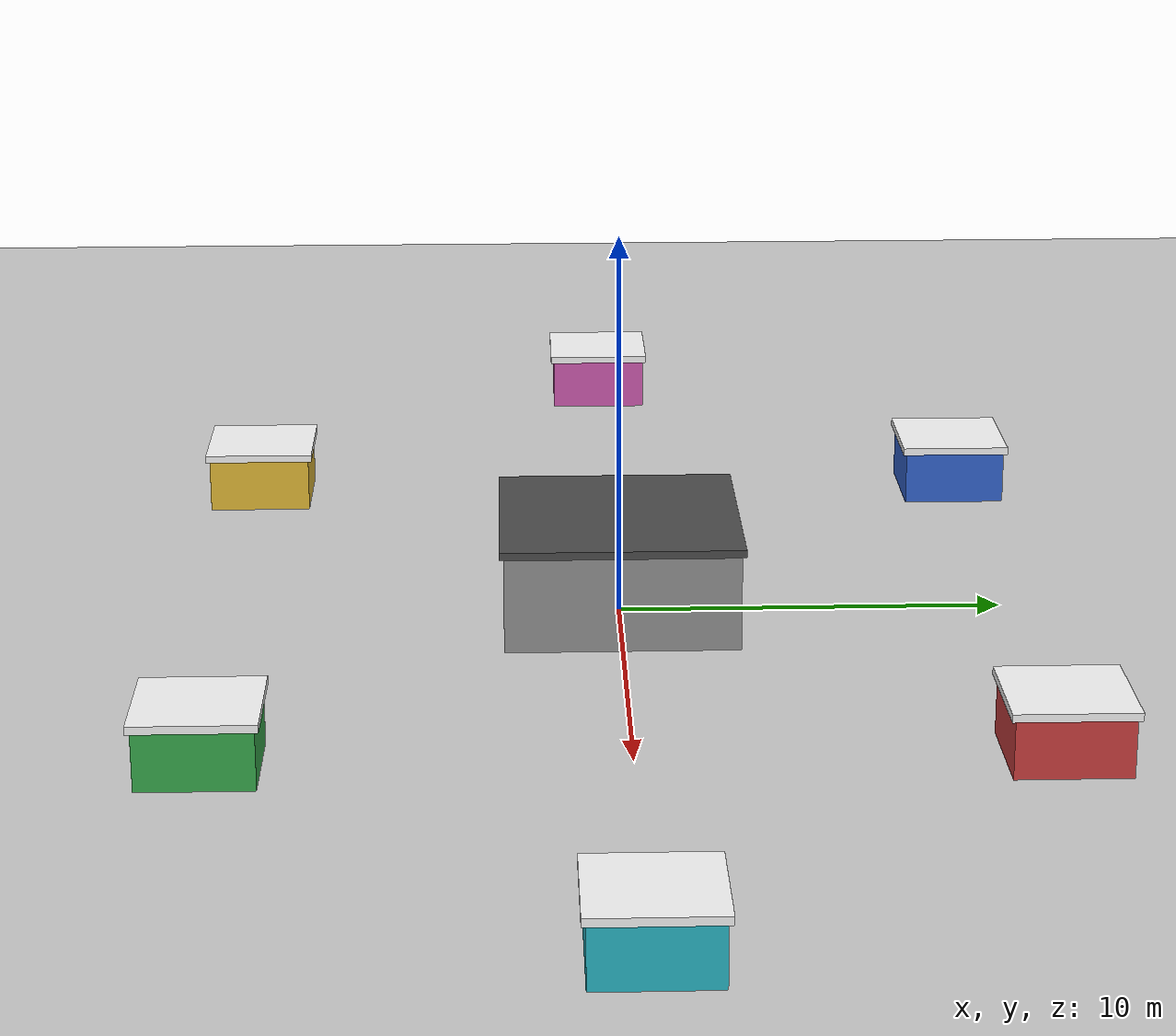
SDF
<?xml version="1.0"?>
<sdf version="1.6">
  <world name="mars_delivery_world">

    <gravity>0 0 -9.81</gravity>
    <magnetic_field>6.0e-6 2.3e-5 -4.2e-5</magnetic_field>
    <atmosphere type="adiabatic"/>

    <physics type="ode">
      <max_step_size>0.002</max_step_size>
      <real_time_factor>1.0</real_time_factor>
      <real_time_update_rate>500</real_time_update_rate>
    </physics>

    <scene>
      <ambient>0.55 0.55 0.55 1</ambient>
      <background>0.76 0.84 0.96 1</background>
      <shadows>true</shadows>
      <sky>
        <time>13.0</time>
        <sunrise>6.0</sunrise>
        <sunset>20.0</sunset>
      </sky>
    </scene>

    <gui fullscreen="0">
      <camera name="user_camera">
        <pose>0 -50 40 0.72 0.0 1.57</pose>
        <view_controller>orbit</view_controller>
      </camera>
    </gui>

    <include>
      <uri>model://ground_plane</uri>
    </include>

    <include>
      <uri>model://sun</uri>
    </include>

    <plugin name="gazebo_ros_state" filename="libgazebo_ros_state.so">
      <ros>
        <namespace>/gazebo</namespace>
      </ros>
      <update_rate>60</update_rate>
    </plugin>

    <include>
      <uri>model://warehouse</uri>
      <name>Warehouse</name>
      <pose>0 0 0 0 0 0</pose>
    </include>

    <include>
      <uri>model://house1</uri>
      <name>House1</name>
      <pose>10 10 0 0 0 0</pose>
    </include>

    <include>
      <uri>model://house2</uri>
      <name>House2</name>
      <pose>10 -10 0 0 0 0</pose>
    </include>

    <include>
      <uri>model://house3</uri>
      <name>House3</name>
      <pose>-10 10 0 0 0 0</pose>
    </include>

    <include>
      <uri>model://house4</uri>
      <name>House4</name>
      <pose>-10 -10 0 0 0 0</pose>
    </include>

    <include>
      <uri>model://house5</uri>
      <name>House5</name>
      <pose>20 0 0 0 0 0</pose>
    </include>

    <include>
      <uri>model://house6</uri>
      <name>House6</name>
      <pose>-20 0 0 0 0 0</pose>
    </include>

  </world>
</sdf>

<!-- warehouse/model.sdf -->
<sdf version="1.6">
  <model name="warehouse">
    <static>true</static>
    <link name="warehouse_link">
      <collision name="warehouse_collision">
        <pose>0 0 1.25 0 0 0</pose>
        <geometry>
          <box>
            <size>6 6 2.5</size>
          </box>
        </geometry>
      </collision>

      <visual name="warehouse_visual">
        <pose>0 0 1.25 0 0 0</pose>
        <geometry>
          <box>
            <size>6 6 2.5</size>
          </box>
        </geometry>
        <material>
          <ambient>0.45 0.45 0.45 1</ambient>
          <diffuse>0.58 0.58 0.58 1</diffuse>
          <specular>0.08 0.08 0.08 1</specular>
        </material>
      </visual>

      <visual name="warehouse_roof_visual">
        <pose>0 0 2.60 0 0 0</pose>
        <geometry>
          <box>
            <size>6.2 6.2 0.20</size>
          </box>
        </geometry>
        <material>
          <ambient>0.20 0.20 0.20 1</ambient>
          <diffuse>0.30 0.30 0.30 1</diffuse>
          <specular>0.05 0.05 0.05 1</specular>
        </material>
      </visual>
    </link>
  </model>
</sdf>

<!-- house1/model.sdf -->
<sdf version="1.6">
  <model name="house1">
    <static>true</static>
    <link name="house_link">
      <collision name="house_collision">
        <pose>0 0 0.75 0 0 0</pose>
        <geometry>
          <box>
            <size>2.8 2.8 1.5</size>
          </box>
        </geometry>
      </collision>

      <visual name="house_visual">
        <pose>0 0 0.75 0 0 0</pose>
        <geometry>
          <box>
            <size>2.8 2.8 1.5</size>
          </box>
        </geometry>
        <material>
          <ambient>0.80 0.25 0.25 1</ambient>
          <diffuse>0.80 0.25 0.25 1</diffuse>
          <specular>0.07 0.07 0.07 1</specular>
        </material>
      </visual>

      <visual name="roof_visual">
        <pose>0 0 1.55 0 0 0</pose>
        <geometry>
          <box>
            <size>3.0 3.0 0.20</size>
          </box>
        </geometry>
        <material>
          <ambient>0.92 0.92 0.92 1</ambient>
          <diffuse>0.98 0.98 0.98 1</diffuse>
          <specular>0.04 0.04 0.04 1</specular>
        </material>
      </visual>
    </link>
  </model>
</sdf>

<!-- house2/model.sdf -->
<sdf version="1.6">
  <model name="house2">
    <static>true</static>
    <link name="house_link">
      <collision name="house_collision">
        <pose>0 0 0.75 0 0 0</pose>
        <geometry>
          <box>
            <size>2.8 2.8 1.5</size>
          </box>
        </geometry>
      </collision>

      <visual name="house_visual">
        <pose>0 0 0.75 0 0 0</pose>
        <geometry>
          <box>
            <size>2.8 2.8 1.5</size>
          </box>
        </geometry>
        <material>
          <ambient>0.22 0.67 0.30 1</ambient>
          <diffuse>0.22 0.67 0.30 1</diffuse>
          <specular>0.07 0.07 0.07 1</specular>
        </material>
      </visual>

      <visual name="roof_visual">
        <pose>0 0 1.55 0 0 0</pose>
        <geometry>
          <box>
            <size>3.0 3.0 0.20</size>
          </box>
        </geometry>
        <material>
          <ambient>0.92 0.92 0.92 1</ambient>
          <diffuse>0.98 0.98 0.98 1</diffuse>
          <specular>0.04 0.04 0.04 1</specular>
        </material>
      </visual>
    </link>
  </model>
</sdf>

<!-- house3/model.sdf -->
<sdf version="1.6">
  <model name="house3">
    <static>true</static>
    <link name="house_link">
      <collision name="house_collision">
        <pose>0 0 0.75 0 0 0</pose>
        <geometry>
          <box>
            <size>2.8 2.8 1.5</size>
          </box>
        </geometry>
      </collision>

      <visual name="house_visual">
        <pose>0 0 0.75 0 0 0</pose>
        <geometry>
          <box>
            <size>2.8 2.8 1.5</size>
          </box>
        </geometry>
        <material>
          <ambient>0.20 0.40 0.82 1</ambient>
          <diffuse>0.20 0.40 0.82 1</diffuse>
          <specular>0.07 0.07 0.07 1</specular>
        </material>
      </visual>

      <visual name="roof_visual">
        <pose>0 0 1.55 0 0 0</pose>
        <geometry>
          <box>
            <size>3.0 3.0 0.20</size>
          </box>
        </geometry>
        <material>
          <ambient>0.92 0.92 0.92 1</ambient>
          <diffuse>0.98 0.98 0.98 1</diffuse>
          <specular>0.04 0.04 0.04 1</specular>
        </material>
      </visual>
    </link>
  </model>
</sdf>

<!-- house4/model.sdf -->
<sdf version="1.6">
  <model name="house4">
    <static>true</static>
    <link name="house_link">
      <collision name="house_collision">
        <pose>0 0 0.75 0 0 0</pose>
        <geometry>
          <box>
            <size>2.8 2.8 1.5</size>
          </box>
        </geometry>
      </collision>

      <visual name="house_visual">
        <pose>0 0 0.75 0 0 0</pose>
        <geometry>
          <box>
            <size>2.8 2.8 1.5</size>
          </box>
        </geometry>
        <material>
          <ambient>0.90 0.74 0.22 1</ambient>
          <diffuse>0.90 0.74 0.22 1</diffuse>
          <specular>0.07 0.07 0.07 1</specular>
        </material>
      </visual>

      <visual name="roof_visual">
        <pose>0 0 1.55 0 0 0</pose>
        <geometry>
          <box>
            <size>3.0 3.0 0.20</size>
          </box>
        </geometry>
        <material>
          <ambient>0.92 0.92 0.92 1</ambient>
          <diffuse>0.98 0.98 0.98 1</diffuse>
          <specular>0.04 0.04 0.04 1</specular>
        </material>
      </visual>
    </link>
  </model>
</sdf>

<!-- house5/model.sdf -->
<sdf version="1.6">
  <model name="house5">
    <static>true</static>
    <link name="house_link">
      <collision name="house_collision">
        <pose>0 0 0.75 0 0 0</pose>
        <geometry>
          <box>
            <size>2.8 2.8 1.5</size>
          </box>
        </geometry>
      </collision>

      <visual name="house_visual">
        <pose>0 0 0.75 0 0 0</pose>
        <geometry>
          <box>
            <size>2.8 2.8 1.5</size>
          </box>
        </geometry>
        <material>
          <ambient>0.16 0.72 0.78 1</ambient>
          <diffuse>0.16 0.72 0.78 1</diffuse>
          <specular>0.07 0.07 0.07 1</specular>
        </material>
      </visual>

      <visual name="roof_visual">
        <pose>0 0 1.55 0 0 0</pose>
        <geometry>
          <box>
            <size>3.0 3.0 0.20</size>
          </box>
        </geometry>
        <material>
          <ambient>0.92 0.92 0.92 1</ambient>
          <diffuse>0.98 0.98 0.98 1</diffuse>
          <specular>0.04 0.04 0.04 1</specular>
        </material>
      </visual>
    </link>
  </model>
</sdf>

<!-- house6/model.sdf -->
<sdf version="1.6">
  <model name="house6">
    <static>true</static>
    <link name="house_link">
      <collision name="house_collision">
        <pose>0 0 0.75 0 0 0</pose>
        <geometry>
          <box>
            <size>2.8 2.8 1.5</size>
          </box>
        </geometry>
      </collision>

      <visual name="house_visual">
        <pose>0 0 0.75 0 0 0</pose>
        <geometry>
          <box>
            <size>2.8 2.8 1.5</size>
          </box>
        </geometry>
        <material>
          <ambient>0.82 0.36 0.70 1</ambient>
          <diffuse>0.82 0.36 0.70 1</diffuse>
          <specular>0.07 0.07 0.07 1</specular>
        </material>
      </visual>

      <visual name="roof_visual">
        <pose>0 0 1.55 0 0 0</pose>
        <geometry>
          <box>
            <size>3.0 3.0 0.20</size>
          </box>
        </geometry>
        <material>
          <ambient>0.92 0.92 0.92 1</ambient>
          <diffuse>0.98 0.98 0.98 1</diffuse>
          <specular>0.04 0.04 0.04 1</specular>
        </material>
      </visual>
    </link>
  </model>
</sdf>
